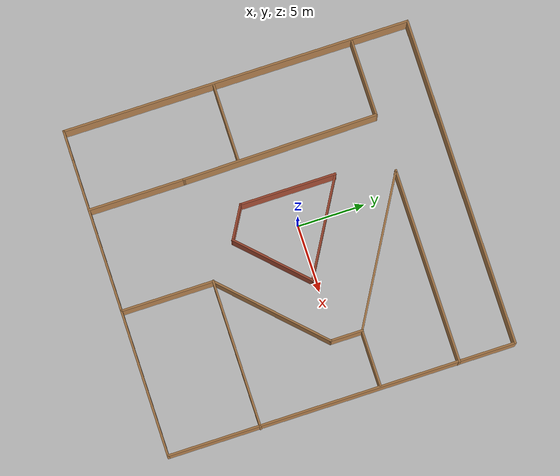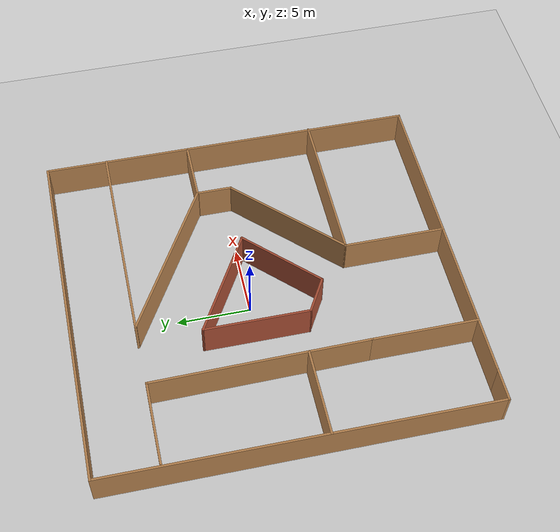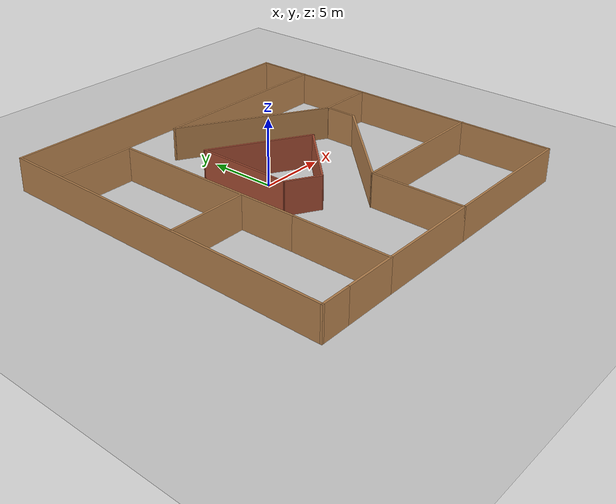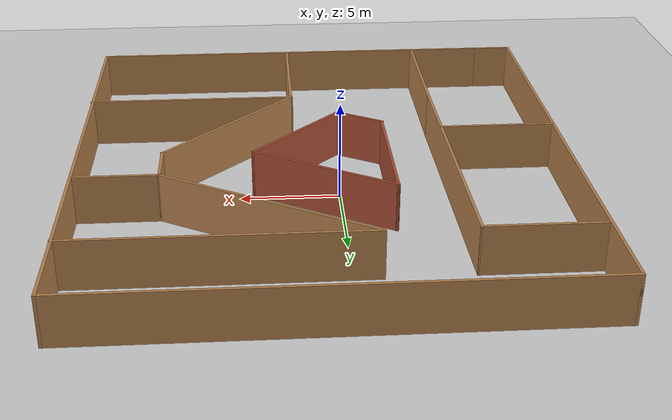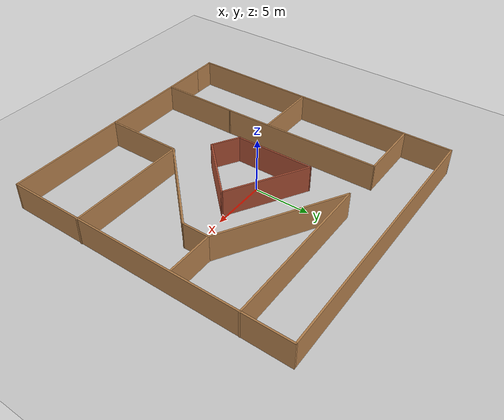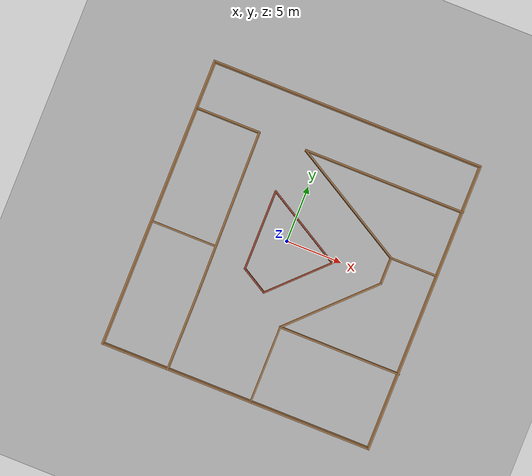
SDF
<sdf version="1.6">
 <world name="default">
  <light name="sun" type="directional">
   <pose>0 0 10 0 -0 0</pose>
   <diffuse>0.8 0.8 0.8 1</diffuse>
   <specular>0.2 0.2 0.2 1</specular>
   <attenuation>
    <range>1000</range>
    <constant>0.9</constant>
    <linear>0.01</linear>
    <quadratic>0.001</quadratic>
   </attenuation>
   <direction>-0.5 0.1 -0.9</direction>
  </light>
  <model name="ground_plane">
   <static>1</static>
   <link name="link">
    <collision name="collision">
     <geometry><plane><normal>0 0 1</normal><size>100 100</size></plane></geometry>
     <surface><friction><ode><mu>100</mu><mu2>50</mu2></ode></friction></surface>
    </collision>
    <visual name="visual">
     <cast_shadows>0</cast_shadows>
     <geometry><plane><normal>0 0 1</normal><size>100 100</size></plane></geometry>
     <material>
      <script><uri>file://media/materials/scripts/gazebo.material</uri><name>Gazebo/Grey</name></script>
     </material>
    </visual>
   </link>
  </model>
  <gravity>0 0 -9.8</gravity>
  <magnetic_field>6e-06 2.3e-05 -4.2e-05</magnetic_field>
  <atmosphere type="adiabatic"/>
  <physics name="default_physics" default="0" type="ode">
   <max_step_size>0.001</max_step_size>
   <real_time_factor>1</real_time_factor>
   <real_time_update_rate>1000</real_time_update_rate>
  </physics>
  <scene><ambient>0.4 0.4 0.4 1</ambient><background>0.7 0.7 0.7 1</background><shadows>1</shadows></scene>
  <audio><device>default</device></audio>
  <spherical_coordinates>
   <surface_model>EARTH_WGS84</surface_model>
   <latitude_deg>0</latitude_deg>
   <longitude_deg>0</longitude_deg>
   <elevation>0</elevation>
   <heading_deg>0</heading_deg>
  </spherical_coordinates>
  <model name="mundoProbarGlobalPlanner">
   <pose>0.830386 -0.960856 0 0 -0 0</pose>
   <link name="Wall_10">
    <collision name="Wall_10_Collision">
     <geometry><box><size>7.25 0.15 2.5</size></box></geometry>
     <pose>0 0 1.25 0 -0 0</pose>
    </collision>
    <visual name="Wall_10_Visual">
     <pose>0 0 1.25 0 -0 0</pose>
     <geometry><box><size>7.25 0.15 2.5</size></box></geometry>
     <material>
      <script><uri>file://media/materials/scripts/gazebo.material</uri><name>Gazebo/Wood</name></script>
      <ambient>1 1 1 1</ambient>
     </material>
     <meta><layer>0</layer></meta>
    </visual>
    <pose>-6.25 -9.375 0 0 -0 -1.5708</pose>
   </link>
   <link name="Wall_11">
    <collision name="Wall_11_Collision">
     <geometry><box><size>7.75 0.15 2.5</size></box></geometry>
     <pose>0 0 1.25 0 -0 0</pose>
    </collision>
    <visual name="Wall_11_Visual">
     <pose>0 0 1.25 0 -0 0</pose>
     <geometry><box><size>7.75 0.15 2.5</size></box></geometry>
     <material>
      <script><uri>file://media/materials/scripts/gazebo.material</uri><name>Gazebo/Wood</name></script>
      <ambient>1 1 1 1</ambient>
     </material>
     <meta><layer>0</layer></meta>
    </visual>
    <pose>-2.45 -12.925 0 0 -0 0</pose>
   </link>
   <link name="Wall_12">
    <collision name="Wall_12_Collision">
     <geometry><box><size>7 0.15 2.5</size></box></geometry>
     <pose>0 0 1.25 0 -0 0</pose>
    </collision>
    <visual name="Wall_12_Visual">
     <pose>0 0 1.25 0 -0 0</pose>
     <geometry><box><size>7 0.15 2.5</size></box></geometry>
     <material>
      <script><uri>file://media/materials/scripts/gazebo.material</uri><name>Gazebo/Wood</name></script>
      <ambient>1 1 1 1</ambient>
     </material>
     <meta><layer>0</layer></meta>
    </visual>
    <pose>1.35 -9.5 0 0 -0 1.5708</pose>
   </link>
   <link name="Wall_13">
    <collision name="Wall_13_Collision">
     <geometry><box><size>9.5 0.15 2.5</size></box></geometry>
     <pose>0 0 1.25 0 -0 0</pose>
    </collision>
    <visual name="Wall_13_Visual">
     <pose>0 0 1.25 0 -0 0</pose>
     <geometry><box><size>9.5 0.15 2.5</size></box></geometry>
     <material>
      <script><uri>file://media/materials/scripts/gazebo.material</uri><name>Gazebo/Wood</name></script>
      <ambient>1 1 1 1</ambient>
     </material>
     <meta><layer>0</layer></meta>
    </visual>
    <pose>4.65573 -2.76928 0 0 -0 0.785398</pose>
   </link>
   <link name="Wall_14">
    <collision name="Wall_14_Collision">
     <geometry><box><size>2.5 0.15 2.5</size></box></geometry>
     <pose>0 0 1.25 0 -0 0</pose>
    </collision>
    <visual name="Wall_14_Visual">
     <pose>0 0 1.25 0 -0 0</pose>
     <geometry><box><size>2.5 0.15 2.5</size></box></geometry>
     <material>
      <script><uri>file://media/materials/scripts/gazebo.material</uri><name>Gazebo/Wood</name></script>
      <ambient>1 1 1 1</ambient>
     </material>
     <meta><layer>0</layer></meta>
    </visual>
    <pose>7.96145 1.71145 0 0 -0 1.5708</pose>
   </link>
   <link name="Wall_16">
    <collision name="Wall_16_Collision">
     <geometry><box><size>11.75 0.15 2.5</size></box></geometry>
     <pose>0 0 1.25 0 -0 0</pose>
    </collision>
    <visual name="Wall_16_Visual">
     <pose>0 0 1.25 0 -0 0</pose>
     <geometry><box><size>11.75 0.15 2.5</size></box></geometry>
     <material>
      <script><uri>file://media/materials/scripts/gazebo.material</uri><name>Gazebo/Wood</name></script>
      <ambient>1 1 1 1</ambient>
     </material>
     <meta><layer>0</layer></meta>
    </visual>
    <pose>2.9385 5.78645 0 0 -0 2.61799</pose>
   </link>
   <link name="Wall_17">
    <collision name="Wall_17_Collision">
     <geometry><box><size>14.5 0.15 2.5</size></box></geometry>
     <pose>0 0 1.25 0 -0 0</pose>
    </collision>
    <visual name="Wall_17_Visual">
     <pose>0 0 1.25 0 -0 0</pose>
     <geometry><box><size>14.5 0.15 2.5</size></box></geometry>
     <material>
      <script><uri>file://media/materials/scripts/gazebo.material</uri><name>Gazebo/Wood</name></script>
      <ambient>1 1 1 1</ambient>
     </material>
     <meta><layer>0</layer></meta>
    </visual>
    <pose>5 8.75 0 0 -0 0</pose>
   </link>
   <link name="Wall_18">
    <collision name="Wall_18_Collision">
     <geometry><box><size>14.6626 0.15 2.5</size></box></geometry>
     <pose>0 0 1.25 0 -0 0</pose>
    </collision>
    <visual name="Wall_18_Visual">
     <pose>0 0 1.25 0 -0 0</pose>
     <geometry><box><size>14.6626 0.15 2.5</size></box></geometry>
     <material>
      <script><uri>file://media/materials/scripts/gazebo.material</uri><name>Gazebo/Wood</name></script>
      <ambient>1 1 1 1</ambient>
     </material>
     <meta><layer>0</layer></meta>
    </visual>
    <pose>-6.34222 1.43072 0 0 -0 -1.55809</pose>
   </link>
   <link name="Wall_20">
    <collision name="Wall_20_Collision">
     <geometry><box><size>7.25 0.15 2.5</size></box></geometry>
     <pose>0 0 1.25 0 -0 0</pose>
    </collision>
    <visual name="Wall_20_Visual">
     <pose>0 0 1.25 0 -0 0</pose>
     <geometry><box><size>7.25 0.15 2.5</size></box></geometry>
     <material>
      <script><uri>file://media/materials/scripts/gazebo.material</uri><name>Gazebo/Bricks</name></script>
      <ambient>1 1 1 1</ambient>
     </material>
     <meta><layer>0</layer></meta>
    </visual>
    <pose>-3.28617 1.00086 0 0 -0 -1.5708</pose>
   </link>
   <link name="Wall_21">
    <collision name="Wall_21_Collision">
     <geometry><box><size>2.75 0.15 2.5</size></box></geometry>
     <pose>0 0 1.25 0 -0 0</pose>
    </collision>
    <visual name="Wall_21_Visual">
     <pose>0 0 1.25 0 -0 0</pose>
     <geometry><box><size>2.75 0.15 2.5</size></box></geometry>
     <material>
      <script><uri>file://media/materials/scripts/gazebo.material</uri><name>Gazebo/Bricks</name></script>
      <ambient>1 1 1 1</ambient>
     </material>
     <meta><layer>0</layer></meta>
    </visual>
    <pose>-2.16033 -3.19914 0 0 -0 -0.523599</pose>
   </link>
   <link name="Wall_22">
    <collision name="Wall_22_Collision">
     <geometry><box><size>6.5 0.15 2.5</size></box></geometry>
     <pose>0 0 1.25 0 -0 0</pose>
    </collision>
    <visual name="Wall_22_Visual">
     <pose>0 0 1.25 0 -0 0</pose>
     <geometry><box><size>6.5 0.15 2.5</size></box></geometry>
     <material>
      <script><uri>file://media/materials/scripts/gazebo.material</uri><name>Gazebo/Bricks</name></script>
      <ambient>1 1 1 1</ambient>
     </material>
     <meta><layer>0</layer></meta>
    </visual>
    <pose>1.21056 -1.60407 0 0 -0 0.785398</pose>
   </link>
   <link name="Wall_23">
    <collision name="Wall_23_Collision">
     <geometry><box><size>7.94352 0.15 2.5</size></box></geometry>
     <pose>0 0 1.25 0 -0 0</pose>
    </collision>
    <visual name="Wall_23_Visual">
     <pose>0 0 1.25 0 -0 0</pose>
     <geometry><box><size>7.94352 0.15 2.5</size></box></geometry>
     <material>
      <script><uri>file://media/materials/scripts/gazebo.material</uri><name>Gazebo/Bricks</name></script>
      <ambient>1 1 1 1</ambient>
     </material>
     <meta><layer>0</layer></meta>
    </visual>
    <pose>0.084729 2.59593 0 0 -0 2.61605</pose>
   </link>
   <link name="Wall_25">
    <collision name="Wall_25_Collision">
     <geometry><box><size>4 0.15 2.5</size></box></geometry>
     <pose>0 0 1.25 0 -0 0</pose>
    </collision>
    <visual name="Wall_25_Visual">
     <pose>0 0 1.25 0 -0 0</pose>
     <geometry><box><size>4 0.15 2.5</size></box></geometry>
     <material>
      <script><uri>file://media/materials/scripts/gazebo.material</uri><name>Gazebo/Wood</name></script>
      <ambient>1 1 1 1</ambient>
     </material>
     <meta><layer>0</layer></meta>
    </visual>
    <pose>-8.175 -12.925 0 0 -0 3.14159</pose>
   </link>
   <link name="Wall_26">
    <collision name="Wall_26_Collision">
     <geometry><box><size>2.25 0.15 2.5</size></box></geometry>
     <pose>0 0 1.25 0 -0 0</pose>
    </collision>
    <visual name="Wall_26_Visual">
     <pose>0 0 1.25 0 -0 0</pose>
     <geometry><box><size>2.25 0.15 2.5</size></box></geometry>
     <material>
      <script><uri>file://media/materials/scripts/gazebo.material</uri><name>Gazebo/Wood</name></script>
      <ambient>1 1 1 1</ambient>
     </material>
     <meta><layer>0</layer></meta>
    </visual>
    <pose>-11.15 -12.925 0 0 -0 3.14159</pose>
   </link>
   <link name="Wall_27">
    <collision name="Wall_27_Collision">
     <geometry><box><size>26 0.15 2.5</size></box></geometry>
     <pose>0 0 1.25 0 -0 0</pose>
    </collision>
    <visual name="Wall_27_Visual">
     <pose>0 0 1.25 0 -0 0</pose>
     <geometry><box><size>26 0.15 2.5</size></box></geometry>
     <material>
      <script><uri>file://media/materials/scripts/gazebo.material</uri><name>Gazebo/Wood</name></script>
      <ambient>1 1 1 1</ambient>
     </material>
     <meta><layer>0</layer></meta>
    </visual>
    <pose>-12.2 -0 0 0 -0 1.5708</pose>
   </link>
   <link name="Wall_28">
    <collision name="Wall_28_Collision">
     <geometry><box><size>24.5 0.15 2.5</size></box></geometry>
     <pose>0 0 1.25 0 -0 0</pose>
    </collision>
    <visual name="Wall_28_Visual">
     <pose>0 0 1.25 0 -0 0</pose>
     <geometry><box><size>24.5 0.15 2.5</size></box></geometry>
     <material>
      <script><uri>file://media/materials/scripts/gazebo.material</uri><name>Gazebo/Wood</name></script>
      <ambient>1 1 1 1</ambient>
     </material>
     <meta><layer>0</layer></meta>
    </visual>
    <pose>-0.024999 12.925 0 0 -0 0</pose>
   </link>
   <link name="Wall_29">
    <collision name="Wall_29_Collision">
     <geometry><box><size>26 0.15 2.5</size></box></geometry>
     <pose>0 0 1.25 0 -0 0</pose>
    </collision>
    <visual name="Wall_29_Visual">
     <pose>0 0 1.25 0 -0 0</pose>
     <geometry><box><size>26 0.15 2.5</size></box></geometry>
     <material>
      <script><uri>file://media/materials/scripts/gazebo.material</uri><name>Gazebo/Wood</name></script>
      <ambient>1 1 1 1</ambient>
     </material>
     <meta><layer>0</layer></meta>
    </visual>
    <pose>12.15 -0 0 0 -0 -1.5708</pose>
   </link>
   <link name="Wall_30">
    <collision name="Wall_30_Collision">
     <geometry><box><size>10.95 0.15 2.5</size></box></geometry>
     <pose>0 0 1.25 0 -0 0</pose>
    </collision>
    <visual name="Wall_30_Visual">
     <pose>0 0 1.25 0 -0 0</pose>
     <geometry><box><size>10.95 0.15 2.5</size></box></geometry>
     <material>
      <script><uri>file://media/materials/scripts/gazebo.material</uri><name>Gazebo/Wood</name></script>
      <ambient>1 1 1 1</ambient>
     </material>
     <meta><layer>0</layer></meta>
    </visual>
    <pose>6.75 -12.925 0 0 -0 3.14159</pose>
   </link>
   <link name="Wall_34">
    <collision name="Wall_34_Collision">
     <geometry><box><size>4.25 0.15 2.5</size></box></geometry>
     <pose>0 0 1.25 0 -0 0</pose>
    </collision>
    <visual name="Wall_34_Visual">
     <pose>0 0 1.25 0 -0 0</pose>
     <geometry><box><size>4.25 0.15 2.5</size></box></geometry>
     <material>
      <script><uri>file://media/materials/scripts/gazebo.material</uri><name>Gazebo/Wood</name></script>
      <ambient>1 1 1 1</ambient>
     </material>
     <meta><layer>0</layer></meta>
    </visual>
    <pose>10.0114 2.88645 0 0 -0 0</pose>
   </link>
   <link name="Wall_36">
    <collision name="Wall_36_Collision">
     <geometry><box><size>11 0.15 2.5</size></box></geometry>
     <pose>0 0 1.25 0 -0 0</pose>
    </collision>
    <visual name="Wall_36_Visual">
     <pose>0 0 1.25 0 -0 0</pose>
     <geometry><box><size>11 0.15 2.5</size></box></geometry>
     <material>
      <script><uri>file://media/materials/scripts/gazebo.material</uri><name>Gazebo/Wood</name></script>
      <ambient>1 1 1 1</ambient>
     </material>
     <meta><layer>0</layer></meta>
    </visual>
    <pose>6.775 -6.075 0 0 -0 0</pose>
   </link>
   <link name="Wall_38">
    <collision name="Wall_38_Collision">
     <geometry><box><size>5.75 0.15 2.5</size></box></geometry>
     <pose>0 0 1.25 0 -0 0</pose>
    </collision>
    <visual name="Wall_38_Visual">
     <pose>0 0 1.25 0 -0 0</pose>
     <geometry><box><size>5.75 0.15 2.5</size></box></geometry>
     <material>
      <script><uri>file://media/materials/scripts/gazebo.material</uri><name>Gazebo/Wood</name></script>
      <ambient>1 1 1 1</ambient>
     </material>
     <meta><layer>0</layer></meta>
    </visual>
    <pose>-9.23445 8.68645 0 0 -0 3.14159</pose>
   </link>
   <link name="Wall_40">
    <collision name="Wall_40_Collision">
     <geometry><box><size>6 0.15 2.5</size></box></geometry>
     <pose>0 0 1.25 0 -0 0</pose>
    </collision>
    <visual name="Wall_40_Visual">
     <pose>0 0 1.25 0 -0 0</pose>
     <geometry><box><size>6 0.15 2.5</size></box></geometry>
     <material>
      <script><uri>file://media/materials/scripts/gazebo.material</uri><name>Gazebo/Wood</name></script>
      <ambient>1 1 1 1</ambient>
     </material>
     <meta><layer>0</layer></meta>
    </visual>
    <pose>-9.26831 -1.69905 0 0 -0 0</pose>
   </link>
   <static>1</static>
  </model>
 </world>
</sdf>
